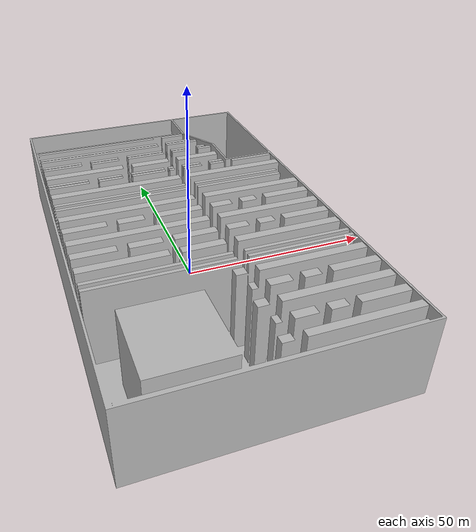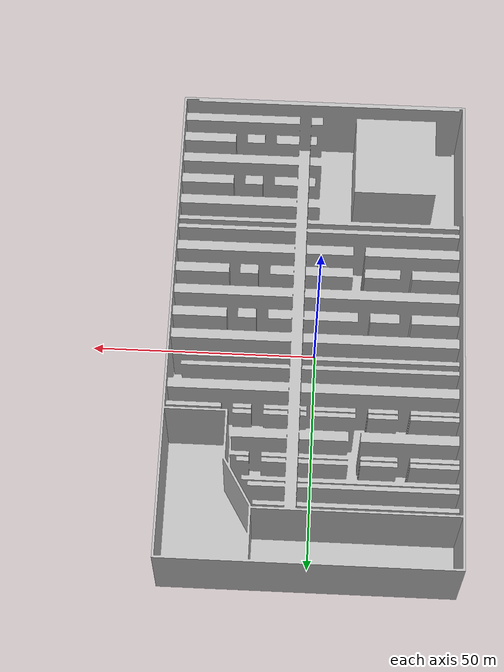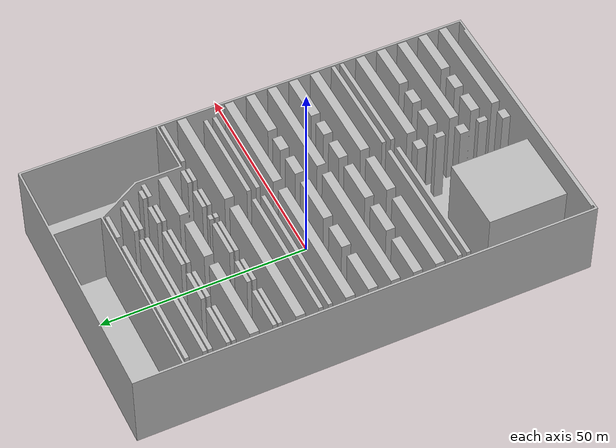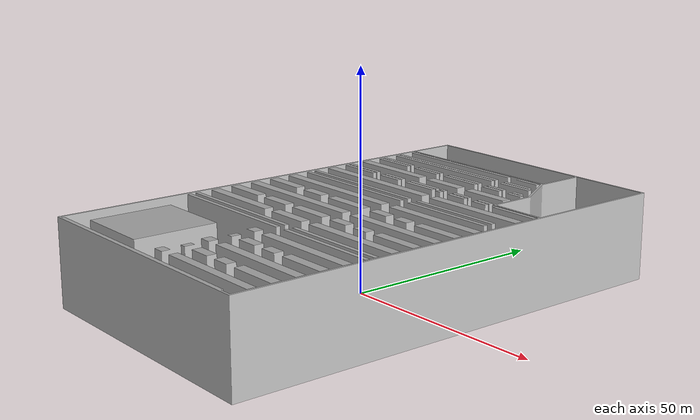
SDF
<?xml version="1.0" ?>
<sdf version="1.6">
  <world name="default">
    <!-- Gazebo ROS Plugins -->
    <plugin name="gazebo_ros_init" filename="libgazebo_ros_init.so"/>
    <plugin name="gazebo_ros_factory" filename="libgazebo_ros_factory.so"/>

    <!-- Physics engine optimization -->
    <physics type="ode">
      <max_step_size>0.004</max_step_size>
      <real_time_factor>1.0</real_time_factor>
      <real_time_update_rate>250</real_time_update_rate>
      <ode>
        <solver>
          <type>quick</type>
          <iters>50</iters>
          <sor>1.3</sor>
        </solver>
        <constraints>
          <cfm>0.0</cfm>
          <erp>0.2</erp>
          <contact_max_correcting_vel>100.0</contact_max_correcting_vel>
          <contact_surface_layer>0.001</contact_surface_layer>
        </constraints>
      </ode>
    </physics>

    <!-- Scene optimization -->
    <scene>
      <ambient>0.4 0.4 0.4 1</ambient>
      <shadows>false</shadows>
    </scene>

    <include>
      <uri>model://sendbooster_world</uri>
      <pose>0 0 0 0 0 0</pose>
    </include>

    <!-- 조명 -->
    <include>
      <uri>model://sun</uri>
    </include>

  </world>
</sdf>

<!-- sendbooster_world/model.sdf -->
<sdf version="1.6">
  <model name="sendbooster_world">
    <static>true</static>

    <link name="link">
      <collision name="collision">
      <pose>0 0 0 1.57 0 0</pose>
        <geometry>
          <mesh>
            <uri>model://sendbooster_world/meshes/sendbooster_world.stl</uri>
            <scale>0.001 0.001 0.001</scale>
          </mesh>
        </geometry>
      </collision>

      <visual name="visual">
      <pose>0 0 0 1.57 0 0</pose>
        <geometry>
          <mesh>
            <uri>model://sendbooster_world/meshes/sendbooster_world.stl</uri>
            <scale>0.001 0.001 0.001</scale>
          </mesh>
        </geometry>
      </visual>
    </link>
  </model>
</sdf>
